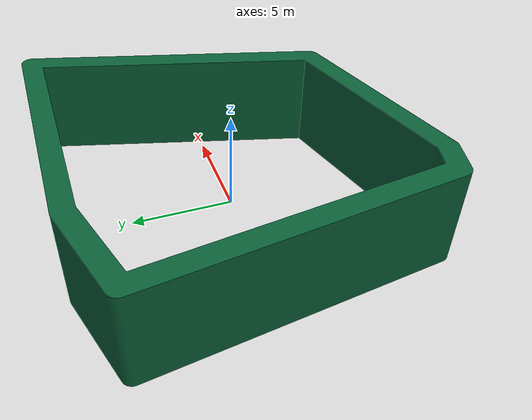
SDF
<?xml version="1.0" ?>
<sdf version="1.6">
  <model name="pcg_walls_test_001_walls">
    <allow_auto_disable>0</allow_auto_disable>
    <link name="mesh">
      <kinematic>0</kinematic>
      <pose frame="">0 0 0 0 -0 0</pose>
      <gravity>1</gravity>
      <self_collide>0</self_collide>
      <collision name="collision">
        <geometry>
          <mesh>
            <scale>1 1 1</scale>
            <uri>file:///home/ross/Projects/AIIA/risk_metric_maps/notebooks/teststl/meshes/pcg_walls_test_001_walls/meshes/VxxRdejytW.stl</uri>
          </mesh>
        </geometry>
        <max_contacts>20</max_contacts>
        <pose frame="">0.64343 -0.901918 -2.5 0 -0 0</pose>
      </collision>
      <visual name="visual">
        <geometry>
          <mesh>
            <scale>1 1 1</scale>
            <uri>file:///home/ross/Projects/AIIA/risk_metric_maps/notebooks/teststl/meshes/pcg_walls_test_001_walls/meshes/HPvLQoJhCV.stl</uri>
          </mesh>
        </geometry>
        <material>
          <diffuse>0.0392156862745 0.372549019608 0.219607843137 1</diffuse>
          <ambient>0.0392157 0.372549 0.219608 1</ambient>
        </material>
        <cast_shadows>1</cast_shadows>
        <transparency>0.0</transparency>
        <pose frame="">0.64343 -0.901918 -2.5 0 -0 0</pose>
      </visual>
    </link>
    <pose frame="">0 0 2.5 0 -0 0</pose>
    <static>1</static>
    <self_collide>0</self_collide>
  </model>
</sdf>
